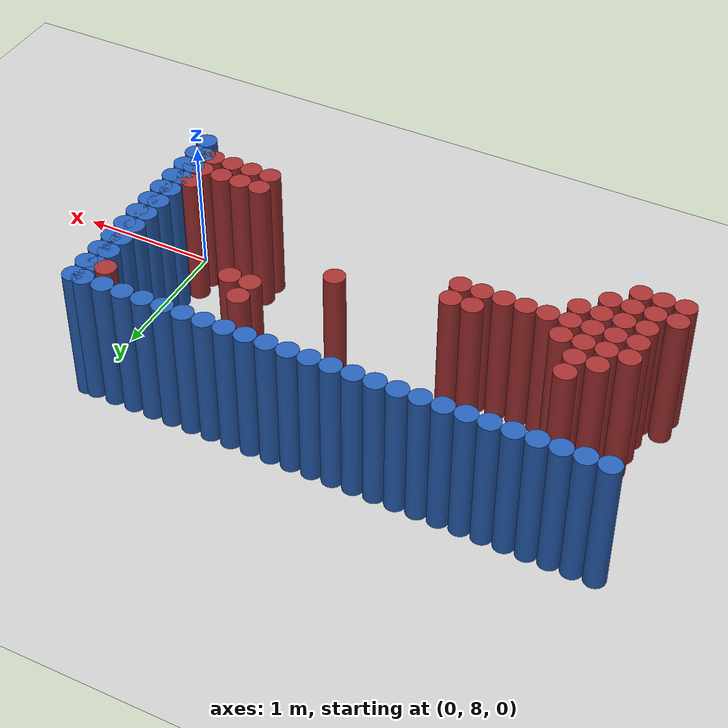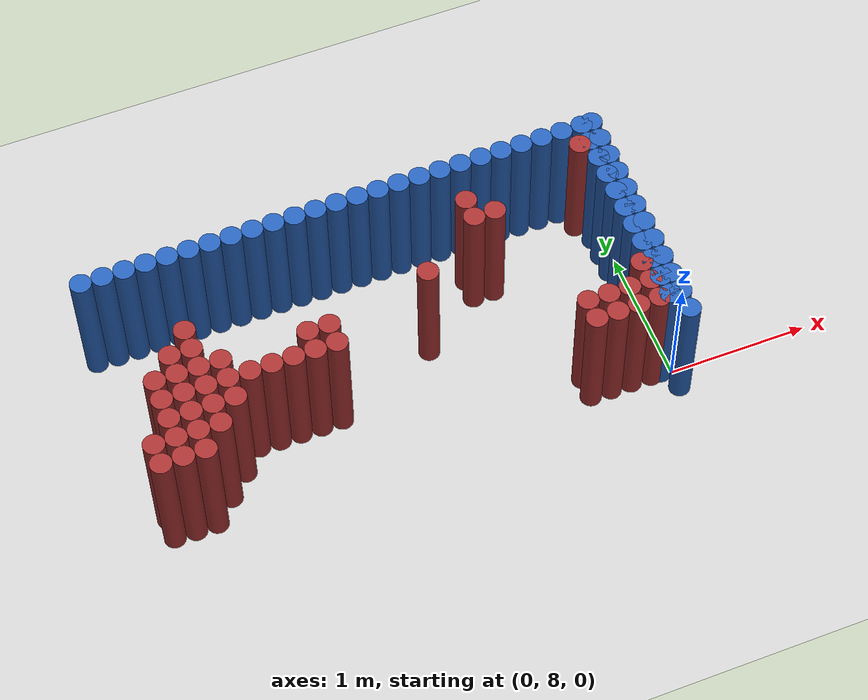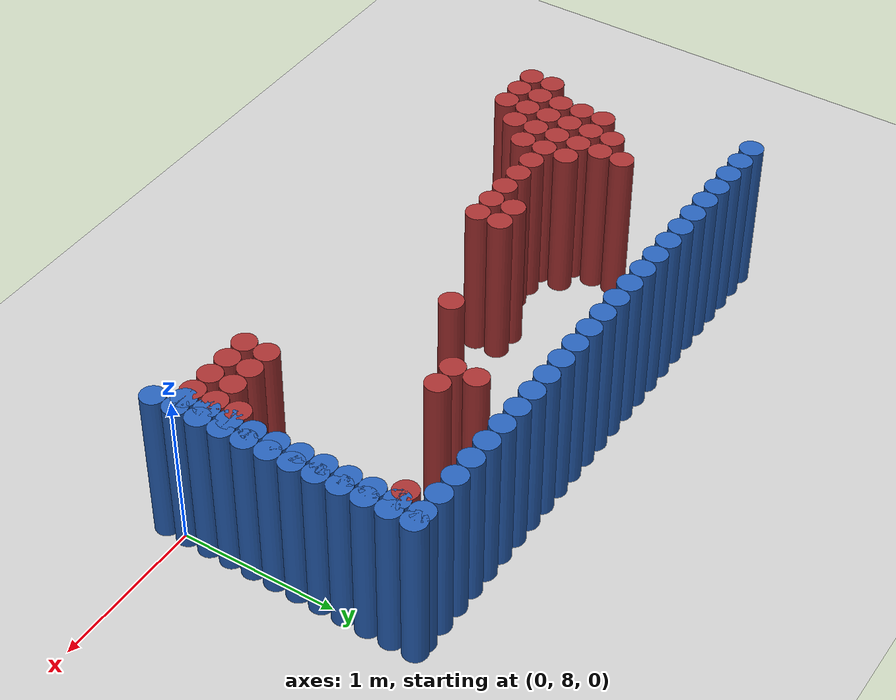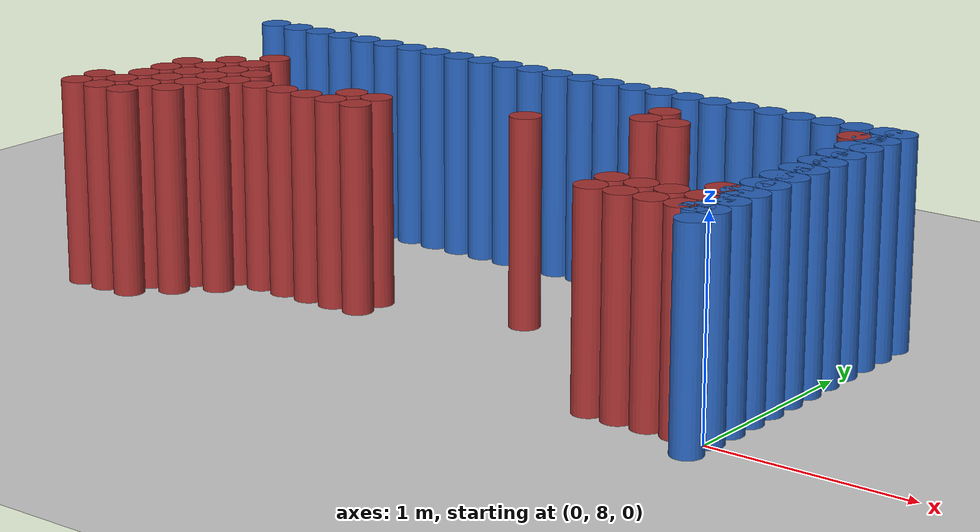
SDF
<sdf version="1.6">
 <world name="barn_world">
  <model name="ground_plane">
   <static>1</static>
   <link name="link">
    <collision name="collision">
     <geometry><plane><normal>0 0 1</normal><size>100 100</size></plane></geometry>
    </collision>
    <visual name="visual">
     <geometry><plane><normal>0 0 1</normal><size>100 100</size></plane></geometry>
     <material>
      <script><uri>file://media/materials/scripts/gazebo.material</uri><name>Gazebo/Grey</name></script>
     </material>
    </visual>
   </link>
  </model>
  <model name="unit_cylinder_209">
   <static>1</static>
   <pose>-3.6000 8.0250 0.5 0 0 0</pose>
   <link name="link">
    <collision name="collision">
     <geometry><cylinder><radius>0.075</radius><length>1</length></cylinder></geometry>
    </collision>
    <visual name="visual">
     <geometry><cylinder><radius>0.075</radius><length>1</length></cylinder></geometry>
     <material><ambient>0.648 0.192 0.192 1</ambient><diffuse>0.648 0.192 0.192 1</diffuse></material>
    </visual>
   </link>
  </model>
  <model name="unit_cylinder_210">
   <static>1</static>
   <pose>-3.6000 8.1750 0.5 0 0 0</pose>
   <link name="link">
    <collision name="collision">
     <geometry><cylinder><radius>0.075</radius><length>1</length></cylinder></geometry>
    </collision>
    <visual name="visual">
     <geometry><cylinder><radius>0.075</radius><length>1</length></cylinder></geometry>
     <material><ambient>0.648 0.192 0.192 1</ambient><diffuse>0.648 0.192 0.192 1</diffuse></material>
    </visual>
   </link>
  </model>
  <model name="unit_cylinder_216">
   <static>1</static>
   <pose>-3.4500 8.0250 0.5 0 0 0</pose>
   <link name="link">
    <collision name="collision">
     <geometry><cylinder><radius>0.075</radius><length>1</length></cylinder></geometry>
    </collision>
    <visual name="visual">
     <geometry><cylinder><radius>0.075</radius><length>1</length></cylinder></geometry>
     <material><ambient>0.648 0.192 0.192 1</ambient><diffuse>0.648 0.192 0.192 1</diffuse></material>
    </visual>
   </link>
  </model>
  <model name="unit_cylinder_217">
   <static>1</static>
   <pose>-3.4500 8.1750 0.5 0 0 0</pose>
   <link name="link">
    <collision name="collision">
     <geometry><cylinder><radius>0.075</radius><length>1</length></cylinder></geometry>
    </collision>
    <visual name="visual">
     <geometry><cylinder><radius>0.075</radius><length>1</length></cylinder></geometry>
     <material><ambient>0.648 0.192 0.192 1</ambient><diffuse>0.648 0.192 0.192 1</diffuse></material>
    </visual>
   </link>
  </model>
  <model name="unit_cylinder_218">
   <static>1</static>
   <pose>-3.4500 8.3250 0.5 0 0 0</pose>
   <link name="link">
    <collision name="collision">
     <geometry><cylinder><radius>0.075</radius><length>1</length></cylinder></geometry>
    </collision>
    <visual name="visual">
     <geometry><cylinder><radius>0.075</radius><length>1</length></cylinder></geometry>
     <material><ambient>0.648 0.192 0.192 1</ambient><diffuse>0.648 0.192 0.192 1</diffuse></material>
    </visual>
   </link>
  </model>
  <model name="unit_cylinder_219">
   <static>1</static>
   <pose>-3.4500 8.4750 0.5 0 0 0</pose>
   <link name="link">
    <collision name="collision">
     <geometry><cylinder><radius>0.075</radius><length>1</length></cylinder></geometry>
    </collision>
    <visual name="visual">
     <geometry><cylinder><radius>0.075</radius><length>1</length></cylinder></geometry>
     <material><ambient>0.648 0.192 0.192 1</ambient><diffuse>0.648 0.192 0.192 1</diffuse></material>
    </visual>
   </link>
  </model>
  <model name="unit_cylinder_220">
   <static>1</static>
   <pose>-3.4500 8.6250 0.5 0 0 0</pose>
   <link name="link">
    <collision name="collision">
     <geometry><cylinder><radius>0.075</radius><length>1</length></cylinder></geometry>
    </collision>
    <visual name="visual">
     <geometry><cylinder><radius>0.075</radius><length>1</length></cylinder></geometry>
     <material><ambient>0.648 0.192 0.192 1</ambient><diffuse>0.648 0.192 0.192 1</diffuse></material>
    </visual>
   </link>
  </model>
  <model name="unit_cylinder_225">
   <static>1</static>
   <pose>-3.3000 8.0250 0.5 0 0 0</pose>
   <link name="link">
    <collision name="collision">
     <geometry><cylinder><radius>0.075</radius><length>1</length></cylinder></geometry>
    </collision>
    <visual name="visual">
     <geometry><cylinder><radius>0.075</radius><length>1</length></cylinder></geometry>
     <material><ambient>0.648 0.192 0.192 1</ambient><diffuse>0.648 0.192 0.192 1</diffuse></material>
    </visual>
   </link>
  </model>
  <model name="unit_cylinder_226">
   <static>1</static>
   <pose>-3.3000 8.1750 0.5 0 0 0</pose>
   <link name="link">
    <collision name="collision">
     <geometry><cylinder><radius>0.075</radius><length>1</length></cylinder></geometry>
    </collision>
    <visual name="visual">
     <geometry><cylinder><radius>0.075</radius><length>1</length></cylinder></geometry>
     <material><ambient>0.648 0.192 0.192 1</ambient><diffuse>0.648 0.192 0.192 1</diffuse></material>
    </visual>
   </link>
  </model>
  <model name="unit_cylinder_227">
   <static>1</static>
   <pose>-3.3000 8.3250 0.5 0 0 0</pose>
   <link name="link">
    <collision name="collision">
     <geometry><cylinder><radius>0.075</radius><length>1</length></cylinder></geometry>
    </collision>
    <visual name="visual">
     <geometry><cylinder><radius>0.075</radius><length>1</length></cylinder></geometry>
     <material><ambient>0.648 0.192 0.192 1</ambient><diffuse>0.648 0.192 0.192 1</diffuse></material>
    </visual>
   </link>
  </model>
  <model name="unit_cylinder_228">
   <static>1</static>
   <pose>-3.3000 8.4750 0.5 0 0 0</pose>
   <link name="link">
    <collision name="collision">
     <geometry><cylinder><radius>0.075</radius><length>1</length></cylinder></geometry>
    </collision>
    <visual name="visual">
     <geometry><cylinder><radius>0.075</radius><length>1</length></cylinder></geometry>
     <material><ambient>0.648 0.192 0.192 1</ambient><diffuse>0.648 0.192 0.192 1</diffuse></material>
    </visual>
   </link>
  </model>
  <model name="unit_cylinder_229">
   <static>1</static>
   <pose>-3.3000 8.6250 0.5 0 0 0</pose>
   <link name="link">
    <collision name="collision">
     <geometry><cylinder><radius>0.075</radius><length>1</length></cylinder></geometry>
    </collision>
    <visual name="visual">
     <geometry><cylinder><radius>0.075</radius><length>1</length></cylinder></geometry>
     <material><ambient>0.648 0.192 0.192 1</ambient><diffuse>0.648 0.192 0.192 1</diffuse></material>
    </visual>
   </link>
  </model>
  <model name="unit_cylinder_230">
   <static>1</static>
   <pose>-3.3000 8.7750 0.5 0 0 0</pose>
   <link name="link">
    <collision name="collision">
     <geometry><cylinder><radius>0.075</radius><length>1</length></cylinder></geometry>
    </collision>
    <visual name="visual">
     <geometry><cylinder><radius>0.075</radius><length>1</length></cylinder></geometry>
     <material><ambient>0.648 0.192 0.192 1</ambient><diffuse>0.648 0.192 0.192 1</diffuse></material>
    </visual>
   </link>
  </model>
  <model name="unit_cylinder_234">
   <static>1</static>
   <pose>-3.1500 8.1750 0.5 0 0 0</pose>
   <link name="link">
    <collision name="collision">
     <geometry><cylinder><radius>0.075</radius><length>1</length></cylinder></geometry>
    </collision>
    <visual name="visual">
     <geometry><cylinder><radius>0.075</radius><length>1</length></cylinder></geometry>
     <material><ambient>0.648 0.192 0.192 1</ambient><diffuse>0.648 0.192 0.192 1</diffuse></material>
    </visual>
   </link>
  </model>
  <model name="unit_cylinder_235">
   <static>1</static>
   <pose>-3.1500 8.3250 0.5 0 0 0</pose>
   <link name="link">
    <collision name="collision">
     <geometry><cylinder><radius>0.075</radius><length>1</length></cylinder></geometry>
    </collision>
    <visual name="visual">
     <geometry><cylinder><radius>0.075</radius><length>1</length></cylinder></geometry>
     <material><ambient>0.648 0.192 0.192 1</ambient><diffuse>0.648 0.192 0.192 1</diffuse></material>
    </visual>
   </link>
  </model>
  <model name="unit_cylinder_236">
   <static>1</static>
   <pose>-3.1500 8.4750 0.5 0 0 0</pose>
   <link name="link">
    <collision name="collision">
     <geometry><cylinder><radius>0.075</radius><length>1</length></cylinder></geometry>
    </collision>
    <visual name="visual">
     <geometry><cylinder><radius>0.075</radius><length>1</length></cylinder></geometry>
     <material><ambient>0.648 0.192 0.192 1</ambient><diffuse>0.648 0.192 0.192 1</diffuse></material>
    </visual>
   </link>
  </model>
  <model name="unit_cylinder_237">
   <static>1</static>
   <pose>-3.1500 8.6250 0.5 0 0 0</pose>
   <link name="link">
    <collision name="collision">
     <geometry><cylinder><radius>0.075</radius><length>1</length></cylinder></geometry>
    </collision>
    <visual name="visual">
     <geometry><cylinder><radius>0.075</radius><length>1</length></cylinder></geometry>
     <material><ambient>0.648 0.192 0.192 1</ambient><diffuse>0.648 0.192 0.192 1</diffuse></material>
    </visual>
   </link>
  </model>
  <model name="unit_cylinder_238">
   <static>1</static>
   <pose>-3.1500 8.7750 0.5 0 0 0</pose>
   <link name="link">
    <collision name="collision">
     <geometry><cylinder><radius>0.075</radius><length>1</length></cylinder></geometry>
    </collision>
    <visual name="visual">
     <geometry><cylinder><radius>0.075</radius><length>1</length></cylinder></geometry>
     <material><ambient>0.648 0.192 0.192 1</ambient><diffuse>0.648 0.192 0.192 1</diffuse></material>
    </visual>
   </link>
  </model>
  <model name="unit_cylinder_239">
   <static>1</static>
   <pose>-3.1500 8.9250 0.5 0 0 0</pose>
   <link name="link">
    <collision name="collision">
     <geometry><cylinder><radius>0.075</radius><length>1</length></cylinder></geometry>
    </collision>
    <visual name="visual">
     <geometry><cylinder><radius>0.075</radius><length>1</length></cylinder></geometry>
     <material><ambient>0.648 0.192 0.192 1</ambient><diffuse>0.648 0.192 0.192 1</diffuse></material>
    </visual>
   </link>
  </model>
  <model name="unit_cylinder_242">
   <static>1</static>
   <pose>-3.0000 8.3250 0.5 0 0 0</pose>
   <link name="link">
    <collision name="collision">
     <geometry><cylinder><radius>0.075</radius><length>1</length></cylinder></geometry>
    </collision>
    <visual name="visual">
     <geometry><cylinder><radius>0.075</radius><length>1</length></cylinder></geometry>
     <material><ambient>0.648 0.192 0.192 1</ambient><diffuse>0.648 0.192 0.192 1</diffuse></material>
    </visual>
   </link>
  </model>
  <model name="unit_cylinder_243">
   <static>1</static>
   <pose>-3.0000 8.4750 0.5 0 0 0</pose>
   <link name="link">
    <collision name="collision">
     <geometry><cylinder><radius>0.075</radius><length>1</length></cylinder></geometry>
    </collision>
    <visual name="visual">
     <geometry><cylinder><radius>0.075</radius><length>1</length></cylinder></geometry>
     <material><ambient>0.648 0.192 0.192 1</ambient><diffuse>0.648 0.192 0.192 1</diffuse></material>
    </visual>
   </link>
  </model>
  <model name="unit_cylinder_244">
   <static>1</static>
   <pose>-3.0000 8.6250 0.5 0 0 0</pose>
   <link name="link">
    <collision name="collision">
     <geometry><cylinder><radius>0.075</radius><length>1</length></cylinder></geometry>
    </collision>
    <visual name="visual">
     <geometry><cylinder><radius>0.075</radius><length>1</length></cylinder></geometry>
     <material><ambient>0.648 0.192 0.192 1</ambient><diffuse>0.648 0.192 0.192 1</diffuse></material>
    </visual>
   </link>
  </model>
  <model name="unit_cylinder_249">
   <static>1</static>
   <pose>-2.8500 8.4750 0.5 0 0 0</pose>
   <link name="link">
    <collision name="collision">
     <geometry><cylinder><radius>0.075</radius><length>1</length></cylinder></geometry>
    </collision>
    <visual name="visual">
     <geometry><cylinder><radius>0.075</radius><length>1</length></cylinder></geometry>
     <material><ambient>0.648 0.192 0.192 1</ambient><diffuse>0.648 0.192 0.192 1</diffuse></material>
    </visual>
   </link>
  </model>
  <model name="unit_cylinder_253">
   <static>1</static>
   <pose>-2.7000 8.4750 0.5 0 0 0</pose>
   <link name="link">
    <collision name="collision">
     <geometry><cylinder><radius>0.075</radius><length>1</length></cylinder></geometry>
    </collision>
    <visual name="visual">
     <geometry><cylinder><radius>0.075</radius><length>1</length></cylinder></geometry>
     <material><ambient>0.648 0.192 0.192 1</ambient><diffuse>0.648 0.192 0.192 1</diffuse></material>
    </visual>
   </link>
  </model>
  <model name="unit_cylinder_255">
   <static>1</static>
   <pose>-2.5500 8.4750 0.5 0 0 0</pose>
   <link name="link">
    <collision name="collision">
     <geometry><cylinder><radius>0.075</radius><length>1</length></cylinder></geometry>
    </collision>
    <visual name="visual">
     <geometry><cylinder><radius>0.075</radius><length>1</length></cylinder></geometry>
     <material><ambient>0.648 0.192 0.192 1</ambient><diffuse>0.648 0.192 0.192 1</diffuse></material>
    </visual>
   </link>
  </model>
  <model name="unit_cylinder_256">
   <static>1</static>
   <pose>-2.4000 8.4750 0.5 0 0 0</pose>
   <link name="link">
    <collision name="collision">
     <geometry><cylinder><radius>0.075</radius><length>1</length></cylinder></geometry>
    </collision>
    <visual name="visual">
     <geometry><cylinder><radius>0.075</radius><length>1</length></cylinder></geometry>
     <material><ambient>0.648 0.192 0.192 1</ambient><diffuse>0.648 0.192 0.192 1</diffuse></material>
    </visual>
   </link>
  </model>
  <model name="unit_cylinder_257">
   <static>1</static>
   <pose>-2.4000 8.6250 0.5 0 0 0</pose>
   <link name="link">
    <collision name="collision">
     <geometry><cylinder><radius>0.075</radius><length>1</length></cylinder></geometry>
    </collision>
    <visual name="visual">
     <geometry><cylinder><radius>0.075</radius><length>1</length></cylinder></geometry>
     <material><ambient>0.648 0.192 0.192 1</ambient><diffuse>0.648 0.192 0.192 1</diffuse></material>
    </visual>
   </link>
  </model>
  <model name="unit_cylinder_258">
   <static>1</static>
   <pose>-2.2500 8.4750 0.5 0 0 0</pose>
   <link name="link">
    <collision name="collision">
     <geometry><cylinder><radius>0.075</radius><length>1</length></cylinder></geometry>
    </collision>
    <visual name="visual">
     <geometry><cylinder><radius>0.075</radius><length>1</length></cylinder></geometry>
     <material><ambient>0.648 0.192 0.192 1</ambient><diffuse>0.648 0.192 0.192 1</diffuse></material>
    </visual>
   </link>
  </model>
  <model name="unit_cylinder_259">
   <static>1</static>
   <pose>-2.2500 8.6250 0.5 0 0 0</pose>
   <link name="link">
    <collision name="collision">
     <geometry><cylinder><radius>0.075</radius><length>1</length></cylinder></geometry>
    </collision>
    <visual name="visual">
     <geometry><cylinder><radius>0.075</radius><length>1</length></cylinder></geometry>
     <material><ambient>0.648 0.192 0.192 1</ambient><diffuse>0.648 0.192 0.192 1</diffuse></material>
    </visual>
   </link>
  </model>
  <model name="unit_cylinder_284">
   <static>1</static>
   <pose>-1.5000 8.7750 0.5 0 0 0</pose>
   <link name="link">
    <collision name="collision">
     <geometry><cylinder><radius>0.075</radius><length>1</length></cylinder></geometry>
    </collision>
    <visual name="visual">
     <geometry><cylinder><radius>0.075</radius><length>1</length></cylinder></geometry>
     <material><ambient>0.648 0.192 0.192 1</ambient><diffuse>0.648 0.192 0.192 1</diffuse></material>
    </visual>
   </link>
  </model>
  <model name="unit_cylinder_295">
   <static>1</static>
   <pose>-1.0500 9.0750 0.5 0 0 0</pose>
   <link name="link">
    <collision name="collision">
     <geometry><cylinder><radius>0.075</radius><length>1</length></cylinder></geometry>
    </collision>
    <visual name="visual">
     <geometry><cylinder><radius>0.075</radius><length>1</length></cylinder></geometry>
     <material><ambient>0.648 0.192 0.192 1</ambient><diffuse>0.648 0.192 0.192 1</diffuse></material>
    </visual>
   </link>
  </model>
  <model name="unit_cylinder_296">
   <static>1</static>
   <pose>-1.0500 9.2250 0.5 0 0 0</pose>
   <link name="link">
    <collision name="collision">
     <geometry><cylinder><radius>0.075</radius><length>1</length></cylinder></geometry>
    </collision>
    <visual name="visual">
     <geometry><cylinder><radius>0.075</radius><length>1</length></cylinder></geometry>
     <material><ambient>0.648 0.192 0.192 1</ambient><diffuse>0.648 0.192 0.192 1</diffuse></material>
    </visual>
   </link>
  </model>
  <model name="unit_cylinder_299">
   <static>1</static>
   <pose>-0.9000 9.0750 0.5 0 0 0</pose>
   <link name="link">
    <collision name="collision">
     <geometry><cylinder><radius>0.075</radius><length>1</length></cylinder></geometry>
    </collision>
    <visual name="visual">
     <geometry><cylinder><radius>0.075</radius><length>1</length></cylinder></geometry>
     <material><ambient>0.648 0.192 0.192 1</ambient><diffuse>0.648 0.192 0.192 1</diffuse></material>
    </visual>
   </link>
  </model>
  <model name="unit_cylinder_310">
   <static>1</static>
   <pose>-0.6000 8.0250 0.5 0 0 0</pose>
   <link name="link">
    <collision name="collision">
     <geometry><cylinder><radius>0.075</radius><length>1</length></cylinder></geometry>
    </collision>
    <visual name="visual">
     <geometry><cylinder><radius>0.075</radius><length>1</length></cylinder></geometry>
     <material><ambient>0.648 0.192 0.192 1</ambient><diffuse>0.648 0.192 0.192 1</diffuse></material>
    </visual>
   </link>
  </model>
  <model name="unit_cylinder_311">
   <static>1</static>
   <pose>-0.6000 8.1750 0.5 0 0 0</pose>
   <link name="link">
    <collision name="collision">
     <geometry><cylinder><radius>0.075</radius><length>1</length></cylinder></geometry>
    </collision>
    <visual name="visual">
     <geometry><cylinder><radius>0.075</radius><length>1</length></cylinder></geometry>
     <material><ambient>0.648 0.192 0.192 1</ambient><diffuse>0.648 0.192 0.192 1</diffuse></material>
    </visual>
   </link>
  </model>
  <model name="unit_cylinder_317">
   <static>1</static>
   <pose>-0.4500 8.0250 0.5 0 0 0</pose>
   <link name="link">
    <collision name="collision">
     <geometry><cylinder><radius>0.075</radius><length>1</length></cylinder></geometry>
    </collision>
    <visual name="visual">
     <geometry><cylinder><radius>0.075</radius><length>1</length></cylinder></geometry>
     <material><ambient>0.648 0.192 0.192 1</ambient><diffuse>0.648 0.192 0.192 1</diffuse></material>
    </visual>
   </link>
  </model>
  <model name="unit_cylinder_318">
   <static>1</static>
   <pose>-0.4500 8.1750 0.5 0 0 0</pose>
   <link name="link">
    <collision name="collision">
     <geometry><cylinder><radius>0.075</radius><length>1</length></cylinder></geometry>
    </collision>
    <visual name="visual">
     <geometry><cylinder><radius>0.075</radius><length>1</length></cylinder></geometry>
     <material><ambient>0.648 0.192 0.192 1</ambient><diffuse>0.648 0.192 0.192 1</diffuse></material>
    </visual>
   </link>
  </model>
  <model name="unit_cylinder_320">
   <static>1</static>
   <pose>-0.3000 8.0250 0.5 0 0 0</pose>
   <link name="link">
    <collision name="collision">
     <geometry><cylinder><radius>0.075</radius><length>1</length></cylinder></geometry>
    </collision>
    <visual name="visual">
     <geometry><cylinder><radius>0.075</radius><length>1</length></cylinder></geometry>
     <material><ambient>0.648 0.192 0.192 1</ambient><diffuse>0.648 0.192 0.192 1</diffuse></material>
    </visual>
   </link>
  </model>
  <model name="unit_cylinder_321">
   <static>1</static>
   <pose>-0.3000 8.1750 0.5 0 0 0</pose>
   <link name="link">
    <collision name="collision">
     <geometry><cylinder><radius>0.075</radius><length>1</length></cylinder></geometry>
    </collision>
    <visual name="visual">
     <geometry><cylinder><radius>0.075</radius><length>1</length></cylinder></geometry>
     <material><ambient>0.648 0.192 0.192 1</ambient><diffuse>0.648 0.192 0.192 1</diffuse></material>
    </visual>
   </link>
  </model>
  <model name="unit_cylinder_326">
   <static>1</static>
   <pose>-0.1500 8.0250 0.5 0 0 0</pose>
   <link name="link">
    <collision name="collision">
     <geometry><cylinder><radius>0.075</radius><length>1</length></cylinder></geometry>
    </collision>
    <visual name="visual">
     <geometry><cylinder><radius>0.075</radius><length>1</length></cylinder></geometry>
     <material><ambient>0.648 0.192 0.192 1</ambient><diffuse>0.648 0.192 0.192 1</diffuse></material>
    </visual>
   </link>
  </model>
  <model name="unit_cylinder_327">
   <static>1</static>
   <pose>-0.1500 8.1750 0.5 0 0 0</pose>
   <link name="link">
    <collision name="collision">
     <geometry><cylinder><radius>0.075</radius><length>1</length></cylinder></geometry>
    </collision>
    <visual name="visual">
     <geometry><cylinder><radius>0.075</radius><length>1</length></cylinder></geometry>
     <material><ambient>0.648 0.192 0.192 1</ambient><diffuse>0.648 0.192 0.192 1</diffuse></material>
    </visual>
   </link>
  </model>
  <model name="unit_cylinder_328">
   <static>1</static>
   <pose>-0.1500 8.3250 0.5 0 0 0</pose>
   <link name="link">
    <collision name="collision">
     <geometry><cylinder><radius>0.075</radius><length>1</length></cylinder></geometry>
    </collision>
    <visual name="visual">
     <geometry><cylinder><radius>0.075</radius><length>1</length></cylinder></geometry>
     <material><ambient>0.648 0.192 0.192 1</ambient><diffuse>0.648 0.192 0.192 1</diffuse></material>
    </visual>
   </link>
  </model>
  <model name="unit_cylinder_329">
   <static>1</static>
   <pose>-0.1500 9.3750 0.5 0 0 0</pose>
   <link name="link">
    <collision name="collision">
     <geometry><cylinder><radius>0.075</radius><length>1</length></cylinder></geometry>
    </collision>
    <visual name="visual">
     <geometry><cylinder><radius>0.075</radius><length>1</length></cylinder></geometry>
     <material><ambient>0.648 0.192 0.192 1</ambient><diffuse>0.648 0.192 0.192 1</diffuse></material>
    </visual>
   </link>
  </model>
  <model name="unit_cylinder_348">
   <static>1</static>
   <pose>0.0000 7.8750 0.5 0 0 0</pose>
   <link name="link">
    <collision name="collision">
     <geometry><cylinder><radius>0.075</radius><length>1</length></cylinder></geometry>
    </collision>
    <visual name="visual">
     <geometry><cylinder><radius>0.075</radius><length>1</length></cylinder></geometry>
     <material><ambient>0.152 0.379 0.72 1</ambient><diffuse>0.152 0.379 0.72 1</diffuse></material>
    </visual>
   </link>
  </model>
  <model name="unit_cylinder_349">
   <static>1</static>
   <pose>0.0000 8.0250 0.5 0 0 0</pose>
   <link name="link">
    <collision name="collision">
     <geometry><cylinder><radius>0.075</radius><length>1</length></cylinder></geometry>
    </collision>
    <visual name="visual">
     <geometry><cylinder><radius>0.075</radius><length>1</length></cylinder></geometry>
     <material><ambient>0.152 0.379 0.72 1</ambient><diffuse>0.152 0.379 0.72 1</diffuse></material>
    </visual>
   </link>
  </model>
  <model name="unit_cylinder_350">
   <static>1</static>
   <pose>0.0000 8.1750 0.5 0 0 0</pose>
   <link name="link">
    <collision name="collision">
     <geometry><cylinder><radius>0.075</radius><length>1</length></cylinder></geometry>
    </collision>
    <visual name="visual">
     <geometry><cylinder><radius>0.075</radius><length>1</length></cylinder></geometry>
     <material><ambient>0.152 0.379 0.72 1</ambient><diffuse>0.152 0.379 0.72 1</diffuse></material>
    </visual>
   </link>
  </model>
  <model name="unit_cylinder_351">
   <static>1</static>
   <pose>0.0000 8.3250 0.5 0 0 0</pose>
   <link name="link">
    <collision name="collision">
     <geometry><cylinder><radius>0.075</radius><length>1</length></cylinder></geometry>
    </collision>
    <visual name="visual">
     <geometry><cylinder><radius>0.075</radius><length>1</length></cylinder></geometry>
     <material><ambient>0.152 0.379 0.72 1</ambient><diffuse>0.152 0.379 0.72 1</diffuse></material>
    </visual>
   </link>
  </model>
  <model name="unit_cylinder_352">
   <static>1</static>
   <pose>0.0000 8.4750 0.5 0 0 0</pose>
   <link name="link">
    <collision name="collision">
     <geometry><cylinder><radius>0.075</radius><length>1</length></cylinder></geometry>
    </collision>
    <visual name="visual">
     <geometry><cylinder><radius>0.075</radius><length>1</length></cylinder></geometry>
     <material><ambient>0.152 0.379 0.72 1</ambient><diffuse>0.152 0.379 0.72 1</diffuse></material>
    </visual>
   </link>
  </model>
  <model name="unit_cylinder_353">
   <static>1</static>
   <pose>0.0000 8.6250 0.5 0 0 0</pose>
   <link name="link">
    <collision name="collision">
     <geometry><cylinder><radius>0.075</radius><length>1</length></cylinder></geometry>
    </collision>
    <visual name="visual">
     <geometry><cylinder><radius>0.075</radius><length>1</length></cylinder></geometry>
     <material><ambient>0.152 0.379 0.72 1</ambient><diffuse>0.152 0.379 0.72 1</diffuse></material>
    </visual>
   </link>
  </model>
  <model name="unit_cylinder_354">
   <static>1</static>
   <pose>0.0000 8.7750 0.5 0 0 0</pose>
   <link name="link">
    <collision name="collision">
     <geometry><cylinder><radius>0.075</radius><length>1</length></cylinder></geometry>
    </collision>
    <visual name="visual">
     <geometry><cylinder><radius>0.075</radius><length>1</length></cylinder></geometry>
     <material><ambient>0.152 0.379 0.72 1</ambient><diffuse>0.152 0.379 0.72 1</diffuse></material>
    </visual>
   </link>
  </model>
  <model name="unit_cylinder_355">
   <static>1</static>
   <pose>0.0000 8.9250 0.5 0 0 0</pose>
   <link name="link">
    <collision name="collision">
     <geometry><cylinder><radius>0.075</radius><length>1</length></cylinder></geometry>
    </collision>
    <visual name="visual">
     <geometry><cylinder><radius>0.075</radius><length>1</length></cylinder></geometry>
     <material><ambient>0.152 0.379 0.72 1</ambient><diffuse>0.152 0.379 0.72 1</diffuse></material>
    </visual>
   </link>
  </model>
  <model name="unit_cylinder_356">
   <static>1</static>
   <pose>0.0000 9.0750 0.5 0 0 0</pose>
   <link name="link">
    <collision name="collision">
     <geometry><cylinder><radius>0.075</radius><length>1</length></cylinder></geometry>
    </collision>
    <visual name="visual">
     <geometry><cylinder><radius>0.075</radius><length>1</length></cylinder></geometry>
     <material><ambient>0.152 0.379 0.72 1</ambient><diffuse>0.152 0.379 0.72 1</diffuse></material>
    </visual>
   </link>
  </model>
  <model name="unit_cylinder_357">
   <static>1</static>
   <pose>0.0000 9.2250 0.5 0 0 0</pose>
   <link name="link">
    <collision name="collision">
     <geometry><cylinder><radius>0.075</radius><length>1</length></cylinder></geometry>
    </collision>
    <visual name="visual">
     <geometry><cylinder><radius>0.075</radius><length>1</length></cylinder></geometry>
     <material><ambient>0.152 0.379 0.72 1</ambient><diffuse>0.152 0.379 0.72 1</diffuse></material>
    </visual>
   </link>
  </model>
  <model name="unit_cylinder_358">
   <static>1</static>
   <pose>0.0000 9.3750 0.5 0 0 0</pose>
   <link name="link">
    <collision name="collision">
     <geometry><cylinder><radius>0.075</radius><length>1</length></cylinder></geometry>
    </collision>
    <visual name="visual">
     <geometry><cylinder><radius>0.075</radius><length>1</length></cylinder></geometry>
     <material><ambient>0.152 0.379 0.72 1</ambient><diffuse>0.152 0.379 0.72 1</diffuse></material>
    </visual>
   </link>
  </model>
  <model name="unit_cylinder_359">
   <static>1</static>
   <pose>0.0000 9.5250 0.5 0 0 0</pose>
   <link name="link">
    <collision name="collision">
     <geometry><cylinder><radius>0.075</radius><length>1</length></cylinder></geometry>
    </collision>
    <visual name="visual">
     <geometry><cylinder><radius>0.075</radius><length>1</length></cylinder></geometry>
     <material><ambient>0.152 0.379 0.72 1</ambient><diffuse>0.152 0.379 0.72 1</diffuse></material>
    </visual>
   </link>
  </model>
  <model name="unit_cylinder_360">
   <static>1</static>
   <pose>-0.0750 9.5250 0.5 0 0 0</pose>
   <link name="link">
    <collision name="collision">
     <geometry><cylinder><radius>0.075</radius><length>1</length></cylinder></geometry>
    </collision>
    <visual name="visual">
     <geometry><cylinder><radius>0.075</radius><length>1</length></cylinder></geometry>
     <material><ambient>0.152 0.379 0.72 1</ambient><diffuse>0.152 0.379 0.72 1</diffuse></material>
    </visual>
   </link>
  </model>
  <model name="unit_cylinder_361">
   <static>1</static>
   <pose>-0.2250 9.5250 0.5 0 0 0</pose>
   <link name="link">
    <collision name="collision">
     <geometry><cylinder><radius>0.075</radius><length>1</length></cylinder></geometry>
    </collision>
    <visual name="visual">
     <geometry><cylinder><radius>0.075</radius><length>1</length></cylinder></geometry>
     <material><ambient>0.152 0.379 0.72 1</ambient><diffuse>0.152 0.379 0.72 1</diffuse></material>
    </visual>
   </link>
  </model>
  <model name="unit_cylinder_362">
   <static>1</static>
   <pose>-0.3750 9.5250 0.5 0 0 0</pose>
   <link name="link">
    <collision name="collision">
     <geometry><cylinder><radius>0.075</radius><length>1</length></cylinder></geometry>
    </collision>
    <visual name="visual">
     <geometry><cylinder><radius>0.075</radius><length>1</length></cylinder></geometry>
     <material><ambient>0.152 0.379 0.72 1</ambient><diffuse>0.152 0.379 0.72 1</diffuse></material>
    </visual>
   </link>
  </model>
  <model name="unit_cylinder_363">
   <static>1</static>
   <pose>-0.5250 9.5250 0.5 0 0 0</pose>
   <link name="link">
    <collision name="collision">
     <geometry><cylinder><radius>0.075</radius><length>1</length></cylinder></geometry>
    </collision>
    <visual name="visual">
     <geometry><cylinder><radius>0.075</radius><length>1</length></cylinder></geometry>
     <material><ambient>0.152 0.379 0.72 1</ambient><diffuse>0.152 0.379 0.72 1</diffuse></material>
    </visual>
   </link>
  </model>
  <model name="unit_cylinder_364">
   <static>1</static>
   <pose>-0.6750 9.5250 0.5 0 0 0</pose>
   <link name="link">
    <collision name="collision">
     <geometry><cylinder><radius>0.075</radius><length>1</length></cylinder></geometry>
    </collision>
    <visual name="visual">
     <geometry><cylinder><radius>0.075</radius><length>1</length></cylinder></geometry>
     <material><ambient>0.152 0.379 0.72 1</ambient><diffuse>0.152 0.379 0.72 1</diffuse></material>
    </visual>
   </link>
  </model>
  <model name="unit_cylinder_365">
   <static>1</static>
   <pose>-0.8250 9.5250 0.5 0 0 0</pose>
   <link name="link">
    <collision name="collision">
     <geometry><cylinder><radius>0.075</radius><length>1</length></cylinder></geometry>
    </collision>
    <visual name="visual">
     <geometry><cylinder><radius>0.075</radius><length>1</length></cylinder></geometry>
     <material><ambient>0.152 0.379 0.72 1</ambient><diffuse>0.152 0.379 0.72 1</diffuse></material>
    </visual>
   </link>
  </model>
  <model name="unit_cylinder_366">
   <static>1</static>
   <pose>-0.9750 9.5250 0.5 0 0 0</pose>
   <link name="link">
    <collision name="collision">
     <geometry><cylinder><radius>0.075</radius><length>1</length></cylinder></geometry>
    </collision>
    <visual name="visual">
     <geometry><cylinder><radius>0.075</radius><length>1</length></cylinder></geometry>
     <material><ambient>0.152 0.379 0.72 1</ambient><diffuse>0.152 0.379 0.72 1</diffuse></material>
    </visual>
   </link>
  </model>
  <model name="unit_cylinder_367">
   <static>1</static>
   <pose>-1.1250 9.5250 0.5 0 0 0</pose>
   <link name="link">
    <collision name="collision">
     <geometry><cylinder><radius>0.075</radius><length>1</length></cylinder></geometry>
    </collision>
    <visual name="visual">
     <geometry><cylinder><radius>0.075</radius><length>1</length></cylinder></geometry>
     <material><ambient>0.152 0.379 0.72 1</ambient><diffuse>0.152 0.379 0.72 1</diffuse></material>
    </visual>
   </link>
  </model>
  <model name="unit_cylinder_368">
   <static>1</static>
   <pose>-1.2750 9.5250 0.5 0 0 0</pose>
   <link name="link">
    <collision name="collision">
     <geometry><cylinder><radius>0.075</radius><length>1</length></cylinder></geometry>
    </collision>
    <visual name="visual">
     <geometry><cylinder><radius>0.075</radius><length>1</length></cylinder></geometry>
     <material><ambient>0.152 0.379 0.72 1</ambient><diffuse>0.152 0.379 0.72 1</diffuse></material>
    </visual>
   </link>
  </model>
  <model name="unit_cylinder_369">
   <static>1</static>
   <pose>-1.4250 9.5250 0.5 0 0 0</pose>
   <link name="link">
    <collision name="collision">
     <geometry><cylinder><radius>0.075</radius><length>1</length></cylinder></geometry>
    </collision>
    <visual name="visual">
     <geometry><cylinder><radius>0.075</radius><length>1</length></cylinder></geometry>
     <material><ambient>0.152 0.379 0.72 1</ambient><diffuse>0.152 0.379 0.72 1</diffuse></material>
    </visual>
   </link>
  </model>
  <model name="unit_cylinder_370">
   <static>1</static>
   <pose>-1.5750 9.5250 0.5 0 0 0</pose>
   <link name="link">
    <collision name="collision">
     <geometry><cylinder><radius>0.075</radius><length>1</length></cylinder></geometry>
    </collision>
    <visual name="visual">
     <geometry><cylinder><radius>0.075</radius><length>1</length></cylinder></geometry>
     <material><ambient>0.152 0.379 0.72 1</ambient><diffuse>0.152 0.379 0.72 1</diffuse></material>
    </visual>
   </link>
  </model>
  <model name="unit_cylinder_371">
   <static>1</static>
   <pose>-1.7250 9.5250 0.5 0 0 0</pose>
   <link name="link">
    <collision name="collision">
     <geometry><cylinder><radius>0.075</radius><length>1</length></cylinder></geometry>
    </collision>
    <visual name="visual">
     <geometry><cylinder><radius>0.075</radius><length>1</length></cylinder></geometry>
     <material><ambient>0.152 0.379 0.72 1</ambient><diffuse>0.152 0.379 0.72 1</diffuse></material>
    </visual>
   </link>
  </model>
  <model name="unit_cylinder_372">
   <static>1</static>
   <pose>-1.8750 9.5250 0.5 0 0 0</pose>
   <link name="link">
    <collision name="collision">
     <geometry><cylinder><radius>0.075</radius><length>1</length></cylinder></geometry>
    </collision>
    <visual name="visual">
     <geometry><cylinder><radius>0.075</radius><length>1</length></cylinder></geometry>
     <material><ambient>0.152 0.379 0.72 1</ambient><diffuse>0.152 0.379 0.72 1</diffuse></material>
    </visual>
   </link>
  </model>
  <model name="unit_cylinder_373">
   <static>1</static>
   <pose>-2.0250 9.5250 0.5 0 0 0</pose>
   <link name="link">
    <collision name="collision">
     <geometry><cylinder><radius>0.075</radius><length>1</length></cylinder></geometry>
    </collision>
    <visual name="visual">
     <geometry><cylinder><radius>0.075</radius><length>1</length></cylinder></geometry>
     <material><ambient>0.152 0.379 0.72 1</ambient><diffuse>0.152 0.379 0.72 1</diffuse></material>
    </visual>
   </link>
  </model>
  <model name="unit_cylinder_374">
   <static>1</static>
   <pose>-2.1750 9.5250 0.5 0 0 0</pose>
   <link name="link">
    <collision name="collision">
     <geometry><cylinder><radius>0.075</radius><length>1</length></cylinder></geometry>
    </collision>
    <visual name="visual">
     <geometry><cylinder><radius>0.075</radius><length>1</length></cylinder></geometry>
     <material><ambient>0.152 0.379 0.72 1</ambient><diffuse>0.152 0.379 0.72 1</diffuse></material>
    </visual>
   </link>
  </model>
  <model name="unit_cylinder_375">
   <static>1</static>
   <pose>-2.3250 9.5250 0.5 0 0 0</pose>
   <link name="link">
    <collision name="collision">
     <geometry><cylinder><radius>0.075</radius><length>1</length></cylinder></geometry>
    </collision>
    <visual name="visual">
     <geometry><cylinder><radius>0.075</radius><length>1</length></cylinder></geometry>
     <material><ambient>0.152 0.379 0.72 1</ambient><diffuse>0.152 0.379 0.72 1</diffuse></material>
    </visual>
   </link>
  </model>
  <model name="unit_cylinder_376">
   <static>1</static>
   <pose>-2.4750 9.5250 0.5 0 0 0</pose>
   <link name="link">
    <collision name="collision">
     <geometry><cylinder><radius>0.075</radius><length>1</length></cylinder></geometry>
    </collision>
    <visual name="visual">
     <geometry><cylinder><radius>0.075</radius><length>1</length></cylinder></geometry>
     <material><ambient>0.152 0.379 0.72 1</ambient><diffuse>0.152 0.379 0.72 1</diffuse></material>
    </visual>
   </link>
  </model>
  <model name="unit_cylinder_377">
   <static>1</static>
   <pose>-2.6250 9.5250 0.5 0 0 0</pose>
   <link name="link">
    <collision name="collision">
     <geometry><cylinder><radius>0.075</radius><length>1</length></cylinder></geometry>
    </collision>
    <visual name="visual">
     <geometry><cylinder><radius>0.075</radius><length>1</length></cylinder></geometry>
     <material><ambient>0.152 0.379 0.72 1</ambient><diffuse>0.152 0.379 0.72 1</diffuse></material>
    </visual>
   </link>
  </model>
  <model name="unit_cylinder_378">
   <static>1</static>
   <pose>-2.7750 9.5250 0.5 0 0 0</pose>
   <link name="link">
    <collision name="collision">
     <geometry><cylinder><radius>0.075</radius><length>1</length></cylinder></geometry>
    </collision>
    <visual name="visual">
     <geometry><cylinder><radius>0.075</radius><length>1</length></cylinder></geometry>
     <material><ambient>0.152 0.379 0.72 1</ambient><diffuse>0.152 0.379 0.72 1</diffuse></material>
    </visual>
   </link>
  </model>
  <model name="unit_cylinder_379">
   <static>1</static>
   <pose>-2.9250 9.5250 0.5 0 0 0</pose>
   <link name="link">
    <collision name="collision">
     <geometry><cylinder><radius>0.075</radius><length>1</length></cylinder></geometry>
    </collision>
    <visual name="visual">
     <geometry><cylinder><radius>0.075</radius><length>1</length></cylinder></geometry>
     <material><ambient>0.152 0.379 0.72 1</ambient><diffuse>0.152 0.379 0.72 1</diffuse></material>
    </visual>
   </link>
  </model>
  <model name="unit_cylinder_380">
   <static>1</static>
   <pose>-3.0750 9.5250 0.5 0 0 0</pose>
   <link name="link">
    <collision name="collision">
     <geometry><cylinder><radius>0.075</radius><length>1</length></cylinder></geometry>
    </collision>
    <visual name="visual">
     <geometry><cylinder><radius>0.075</radius><length>1</length></cylinder></geometry>
     <material><ambient>0.152 0.379 0.72 1</ambient><diffuse>0.152 0.379 0.72 1</diffuse></material>
    </visual>
   </link>
  </model>
  <model name="unit_cylinder_381">
   <static>1</static>
   <pose>-3.2250 9.5250 0.5 0 0 0</pose>
   <link name="link">
    <collision name="collision">
     <geometry><cylinder><radius>0.075</radius><length>1</length></cylinder></geometry>
    </collision>
    <visual name="visual">
     <geometry><cylinder><radius>0.075</radius><length>1</length></cylinder></geometry>
     <material><ambient>0.152 0.379 0.72 1</ambient><diffuse>0.152 0.379 0.72 1</diffuse></material>
    </visual>
   </link>
  </model>
  <model name="unit_cylinder_382">
   <static>1</static>
   <pose>-3.3750 9.5250 0.5 0 0 0</pose>
   <link name="link">
    <collision name="collision">
     <geometry><cylinder><radius>0.075</radius><length>1</length></cylinder></geometry>
    </collision>
    <visual name="visual">
     <geometry><cylinder><radius>0.075</radius><length>1</length></cylinder></geometry>
     <material><ambient>0.152 0.379 0.72 1</ambient><diffuse>0.152 0.379 0.72 1</diffuse></material>
    </visual>
   </link>
  </model>
  <model name="unit_cylinder_383">
   <static>1</static>
   <pose>-3.5250 9.5250 0.5 0 0 0</pose>
   <link name="link">
    <collision name="collision">
     <geometry><cylinder><radius>0.075</radius><length>1</length></cylinder></geometry>
    </collision>
    <visual name="visual">
     <geometry><cylinder><radius>0.075</radius><length>1</length></cylinder></geometry>
     <material><ambient>0.152 0.379 0.72 1</ambient><diffuse>0.152 0.379 0.72 1</diffuse></material>
    </visual>
   </link>
  </model>
  <model name="unit_cylinder_384">
   <static>1</static>
   <pose>-3.6750 9.5250 0.5 0 0 0</pose>
   <link name="link">
    <collision name="collision">
     <geometry><cylinder><radius>0.075</radius><length>1</length></cylinder></geometry>
    </collision>
    <visual name="visual">
     <geometry><cylinder><radius>0.075</radius><length>1</length></cylinder></geometry>
     <material><ambient>0.152 0.379 0.72 1</ambient><diffuse>0.152 0.379 0.72 1</diffuse></material>
    </visual>
   </link>
  </model>
  <model name="unit_cylinder_428">
   <static>1</static>
   <pose>-0.0750 8.0250 0.5 0 0 0</pose>
   <link name="link">
    <collision name="collision">
     <geometry><cylinder><radius>0.075</radius><length>1</length></cylinder></geometry>
    </collision>
    <visual name="visual">
     <geometry><cylinder><radius>0.075</radius><length>1</length></cylinder></geometry>
     <material><ambient>0.152 0.379 0.72 1</ambient><diffuse>0.152 0.379 0.72 1</diffuse></material>
    </visual>
   </link>
  </model>
  <model name="unit_cylinder_430">
   <static>1</static>
   <pose>-0.0750 8.1750 0.5 0 0 0</pose>
   <link name="link">
    <collision name="collision">
     <geometry><cylinder><radius>0.075</radius><length>1</length></cylinder></geometry>
    </collision>
    <visual name="visual">
     <geometry><cylinder><radius>0.075</radius><length>1</length></cylinder></geometry>
     <material><ambient>0.152 0.379 0.72 1</ambient><diffuse>0.152 0.379 0.72 1</diffuse></material>
    </visual>
   </link>
  </model>
  <model name="unit_cylinder_432">
   <static>1</static>
   <pose>-0.0750 8.3250 0.5 0 0 0</pose>
   <link name="link">
    <collision name="collision">
     <geometry><cylinder><radius>0.075</radius><length>1</length></cylinder></geometry>
    </collision>
    <visual name="visual">
     <geometry><cylinder><radius>0.075</radius><length>1</length></cylinder></geometry>
     <material><ambient>0.152 0.379 0.72 1</ambient><diffuse>0.152 0.379 0.72 1</diffuse></material>
    </visual>
   </link>
  </model>
  <model name="unit_cylinder_434">
   <static>1</static>
   <pose>-0.0750 8.4750 0.5 0 0 0</pose>
   <link name="link">
    <collision name="collision">
     <geometry><cylinder><radius>0.075</radius><length>1</length></cylinder></geometry>
    </collision>
    <visual name="visual">
     <geometry><cylinder><radius>0.075</radius><length>1</length></cylinder></geometry>
     <material><ambient>0.152 0.379 0.72 1</ambient><diffuse>0.152 0.379 0.72 1</diffuse></material>
    </visual>
   </link>
  </model>
  <model name="unit_cylinder_436">
   <static>1</static>
   <pose>-0.0750 8.6250 0.5 0 0 0</pose>
   <link name="link">
    <collision name="collision">
     <geometry><cylinder><radius>0.075</radius><length>1</length></cylinder></geometry>
    </collision>
    <visual name="visual">
     <geometry><cylinder><radius>0.075</radius><length>1</length></cylinder></geometry>
     <material><ambient>0.152 0.379 0.72 1</ambient><diffuse>0.152 0.379 0.72 1</diffuse></material>
    </visual>
   </link>
  </model>
  <model name="unit_cylinder_438">
   <static>1</static>
   <pose>-0.0750 8.7750 0.5 0 0 0</pose>
   <link name="link">
    <collision name="collision">
     <geometry><cylinder><radius>0.075</radius><length>1</length></cylinder></geometry>
    </collision>
    <visual name="visual">
     <geometry><cylinder><radius>0.075</radius><length>1</length></cylinder></geometry>
     <material><ambient>0.152 0.379 0.72 1</ambient><diffuse>0.152 0.379 0.72 1</diffuse></material>
    </visual>
   </link>
  </model>
  <model name="unit_cylinder_440">
   <static>1</static>
   <pose>-0.0750 8.9250 0.5 0 0 0</pose>
   <link name="link">
    <collision name="collision">
     <geometry><cylinder><radius>0.075</radius><length>1</length></cylinder></geometry>
    </collision>
    <visual name="visual">
     <geometry><cylinder><radius>0.075</radius><length>1</length></cylinder></geometry>
     <material><ambient>0.152 0.379 0.72 1</ambient><diffuse>0.152 0.379 0.72 1</diffuse></material>
    </visual>
   </link>
  </model>
  <model name="unit_cylinder_442">
   <static>1</static>
   <pose>-0.0750 9.0750 0.5 0 0 0</pose>
   <link name="link">
    <collision name="collision">
     <geometry><cylinder><radius>0.075</radius><length>1</length></cylinder></geometry>
    </collision>
    <visual name="visual">
     <geometry><cylinder><radius>0.075</radius><length>1</length></cylinder></geometry>
     <material><ambient>0.152 0.379 0.72 1</ambient><diffuse>0.152 0.379 0.72 1</diffuse></material>
    </visual>
   </link>
  </model>
  <model name="unit_cylinder_444">
   <static>1</static>
   <pose>-0.0750 9.2250 0.5 0 0 0</pose>
   <link name="link">
    <collision name="collision">
     <geometry><cylinder><radius>0.075</radius><length>1</length></cylinder></geometry>
    </collision>
    <visual name="visual">
     <geometry><cylinder><radius>0.075</radius><length>1</length></cylinder></geometry>
     <material><ambient>0.152 0.379 0.72 1</ambient><diffuse>0.152 0.379 0.72 1</diffuse></material>
    </visual>
   </link>
  </model>
  <model name="unit_cylinder_446">
   <static>1</static>
   <pose>-0.0750 9.3750 0.5 0 0 0</pose>
   <link name="link">
    <collision name="collision">
     <geometry><cylinder><radius>0.075</radius><length>1</length></cylinder></geometry>
    </collision>
    <visual name="visual">
     <geometry><cylinder><radius>0.075</radius><length>1</length></cylinder></geometry>
     <material><ambient>0.152 0.379 0.72 1</ambient><diffuse>0.152 0.379 0.72 1</diffuse></material>
    </visual>
   </link>
  </model>
 </world>
</sdf>
